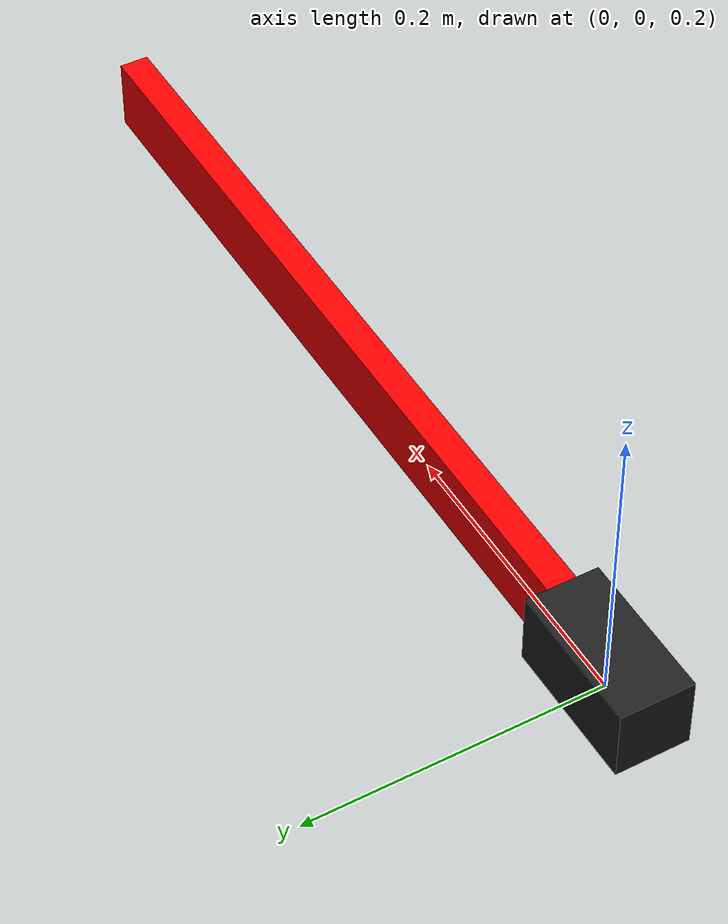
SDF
<?xml version='1.0'?>
<sdf version='1.6'>
  <model name='custom_barrier'>

    <link name='barrier'>
      <inertial>
        <mass>1</mass>
        <inertia>
          <ixx>0.166667</ixx>
          <ixy>0</ixy>
          <ixz>0</ixz>
          <iyy>0.166667</iyy>
          <iyz>0</iyz>
          <izz>0.166667</izz>
        </inertia>
        <pose frame=''>0 0 0 0 -0 0</pose>
      </inertial>
      <self_collide>0</self_collide>
      <enable_wind>0</enable_wind>
      <kinematic>0</kinematic>
      <pose frame=''>0 -0 0.214418 0 -0 0</pose>
      <gravity>0</gravity>
      <visual name='visual'>
        <geometry>
          <box>
            <size>0.6 0.02 0.05</size>
          </box>
        </geometry>
        <material>
          <script>
            <uri>model://create_autorace/custom_barrier/materials/scripts/custom_barrier.material</uri>
            <uri>model://create_autorace/custom_barrier/materials/textures</uri>
            <name>custom_barrier</name>
          </script>
        <ambient>1 0 0 1</ambient>
        </material>
        <pose frame=''>0.3 0 0 0 -0 0</pose>
        <transparency>0</transparency>
        <cast_shadows>1</cast_shadows>
      </visual>
    </link>

    <link name="rev">
      <inertial>
        <mass>1555</mass>
        <inertia>
          <ixx>0.166667</ixx>
          <ixy>0</ixy>
          <ixz>0</ixz>
          <iyy>0.166667</iyy>
          <iyz>0</iyz>
          <izz>0.166667</izz>
        </inertia>
      </inertial>
      <visual name='visual'>
        <geometry>
          <box>
            <size>0.1 0.05 0.05</size>
          </box>
        </geometry>
        <pose frame=''>0 0 0 0 -0 0</pose>
        <material>
          <script>
            <uri>file://media/materials/scripts/gazebo.material</uri>
            <name>Gazebo/Black</name>
          </script>
        </material>

      </visual>
      <self_collide>0</self_collide>
      <enable_wind>0</enable_wind>
      <kinematic>0</kinematic>
      <pose frame=''>0 -0 0.214418 0 -0 0</pose>
      <gravity>0</gravity>

    </link>

    <joint name="barrier_joint" type="revolute">
      <parent>rev</parent>
      <child>barrier</child>
      <pose>0 3 0 0 0 0</pose>

      <axis>
        <initial_position>1.577</initial_position>
        <xyz>0 1 0</xyz>
      </axis>
    </joint>

    <static>0</static>
    <allow_auto_disable>1</allow_auto_disable>
    <plugin name="barrier_plugin" filename="libbarrier_plugin.so">
      <update_rate>0.2</update_rate>
    </plugin>
  </model>
</sdf>
